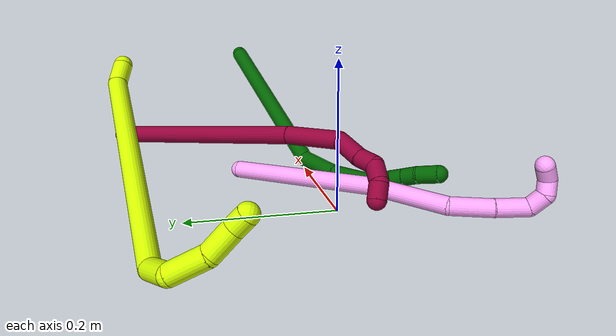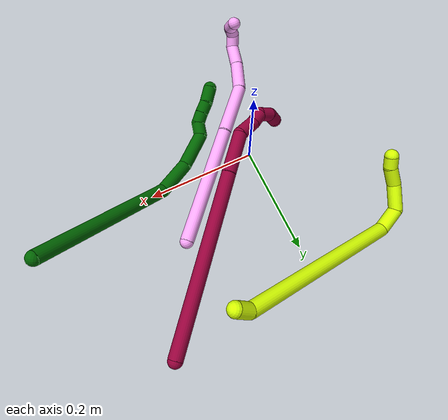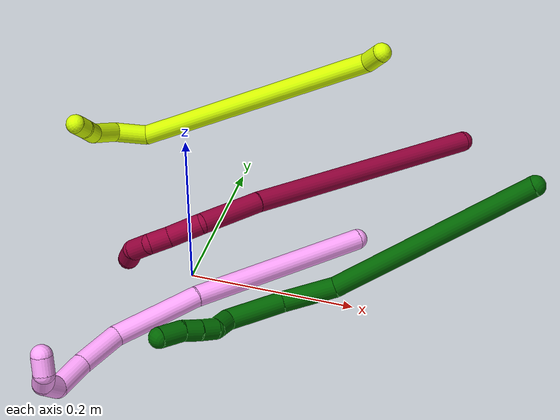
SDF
<sdf version="1.7">
 <world name="default">
  <model name="4">
   <static>0</static>
   <link name="4">
    <collision name="collision-cylinder-e_1_1_4">
     <pose>-0.058887 -0.071931 0.061845 0.860649 -0.555546 -0.260291</pose>
     <geometry><cylinder><radius>0.0125</radius><length>0.223309</length></cylinder></geometry>
     <surface>
      <friction><ode><mu>1.16</mu><mu2>1.16</mu2><slip1>0</slip1><slip2>0</slip2></ode></friction>
      <contact><ode><kp>1e+06</kp><kd>1</kd><max_vel>0</max_vel><min_depth>0.001</min_depth></ode></contact>
     </surface>
    </collision>
    <visual name="visual-cylinder-e_1_1_4">
     <pose>-0.058887 -0.071931 0.061845 0.860649 -0.555546 -0.260291</pose>
     <geometry><cylinder><radius>0.0125</radius><length>0.223309</length></cylinder></geometry>
     <material><ambient>1 0.65098 0.996078 1</ambient></material>
    </visual>
    <collision name="collision-cylinder-e_2_4_5">
     <pose>-0.143158 -0.183569 0.149204 0.999692 -0.493449 -0.273363</pose>
     <geometry><cylinder><radius>0.0125</radius><length>0.107179</length></cylinder></geometry>
     <surface>
      <friction><ode><mu>1.16</mu><mu2>1.16</mu2><slip1>0</slip1><slip2>0</slip2></ode></friction>
      <contact><ode><kp>1e+06</kp><kd>1</kd><max_vel>0</max_vel><min_depth>0.001</min_depth></ode></contact>
     </surface>
    </collision>
    <visual name="visual-cylinder-e_2_4_5">
     <pose>-0.143158 -0.183569 0.149204 0.999692 -0.493449 -0.273363</pose>
     <geometry><cylinder><radius>0.0125</radius><length>0.107179</length></cylinder></geometry>
     <material><ambient>1 0.65098 0.996078 1</ambient></material>
    </visual>
    <collision name="collision-cylinder-e_3_5_6">
     <pose>-0.17367 -0.243271 0.194632 0.787364 -0.179771 -0.074838</pose>
     <geometry><cylinder><radius>0.0125</radius><length>0.057367</length></cylinder></geometry>
     <surface>
      <friction><ode><mu>1.16</mu><mu2>1.16</mu2><slip1>0</slip1><slip2>0</slip2></ode></friction>
      <contact><ode><kp>1e+06</kp><kd>1</kd><max_vel>0</max_vel><min_depth>0.001</min_depth></ode></contact>
     </surface>
    </collision>
    <visual name="visual-cylinder-e_3_5_6">
     <pose>-0.17367 -0.243271 0.194632 0.787364 -0.179771 -0.074838</pose>
     <geometry><cylinder><radius>0.0125</radius><length>0.057367</length></cylinder></geometry>
     <material><ambient>1 0.65098 0.996078 1</ambient></material>
    </visual>
    <collision name="collision-cylinder-e_4_6_7">
     <pose>-0.180392 -0.277903 0.231272 0.718977 -0.071548 -0.026899</pose>
     <geometry><cylinder><radius>0.0125</radius><length>0.044563</length></cylinder></geometry>
     <surface>
      <friction><ode><mu>1.16</mu><mu2>1.16</mu2><slip1>0</slip1><slip2>0</slip2></ode></friction>
      <contact><ode><kp>1e+06</kp><kd>1</kd><max_vel>0</max_vel><min_depth>0.001</min_depth></ode></contact>
     </surface>
    </collision>
    <visual name="visual-cylinder-e_4_6_7">
     <pose>-0.180392 -0.277903 0.231272 0.718977 -0.071548 -0.026899</pose>
     <geometry><cylinder><radius>0.0125</radius><length>0.044563</length></cylinder></geometry>
     <material><ambient>1 0.65098 0.996078 1</ambient></material>
    </visual>
    <collision name="collision-cylinder-e_5_7_8">
     <pose>-0.187236 -0.292509 0.259726 -0.002677 -0.420917 0.000572</pose>
     <geometry><cylinder><radius>0.0125</radius><length>0.025705</length></cylinder></geometry>
     <surface>
      <friction><ode><mu>1.16</mu><mu2>1.16</mu2><slip1>0</slip1><slip2>0</slip2></ode></friction>
      <contact><ode><kp>1e+06</kp><kd>1</kd><max_vel>0</max_vel><min_depth>0.001</min_depth></ode></contact>
     </surface>
    </collision>
    <visual name="visual-cylinder-e_5_7_8">
     <pose>-0.187236 -0.292509 0.259726 -0.002677 -0.420917 0.000572</pose>
     <geometry><cylinder><radius>0.0125</radius><length>0.025705</length></cylinder></geometry>
     <material><ambient>1 0.65098 0.996078 1</ambient></material>
    </visual>
    <collision name="collision-cylinder-e_6_8_9">
     <pose>-0.19269 -0.285942 0.279224 -0.699563 -0.019865 0.007247</pose>
     <geometry><cylinder><radius>0.0125</radius><length>0.020306</length></cylinder></geometry>
     <surface>
      <friction><ode><mu>1.16</mu><mu2>1.16</mu2><slip1>0</slip1><slip2>0</slip2></ode></friction>
      <contact><ode><kp>1e+06</kp><kd>1</kd><max_vel>0</max_vel><min_depth>0.001</min_depth></ode></contact>
     </surface>
    </collision>
    <visual name="visual-cylinder-e_6_8_9">
     <pose>-0.19269 -0.285942 0.279224 -0.699563 -0.019865 0.007247</pose>
     <geometry><cylinder><radius>0.0125</radius><length>0.020306</length></cylinder></geometry>
     <material><ambient>1 0.65098 0.996078 1</ambient></material>
    </visual>
    <collision name="collision-cylinder-e_7_9_2">
     <pose>-0.198353 -0.270604 0.289994 -1.24193 -0.530993 0.384242</pose>
     <geometry><cylinder><radius>0.0125</radius><length>0.021571</length></cylinder></geometry>
     <surface>
      <friction><ode><mu>1.16</mu><mu2>1.16</mu2><slip1>0</slip1><slip2>0</slip2></ode></friction>
      <contact><ode><kp>1e+06</kp><kd>1</kd><max_vel>0</max_vel><min_depth>0.001</min_depth></ode></contact>
     </surface>
    </collision>
    <visual name="visual-cylinder-e_7_9_2">
     <pose>-0.198353 -0.270604 0.289994 -1.24193 -0.530993 0.384242</pose>
     <geometry><cylinder><radius>0.0125</radius><length>0.021571</length></cylinder></geometry>
     <material><ambient>1 0.65098 0.996078 1</ambient></material>
    </visual>
    <collision name="collision-sphere-2">
     <pose>-0.203815 -0.261802 0.292998 0 -0 0</pose>
     <geometry><sphere><radius>0.0125</radius></sphere></geometry>
     <surface>
      <friction><ode><mu>1.16</mu><mu2>1.16</mu2><slip1>0</slip1><slip2>0</slip2></ode></friction>
      <contact><ode><kp>1e+06</kp><kd>1</kd><max_vel>0</max_vel><min_depth>0.001</min_depth></ode></contact>
     </surface>
    </collision>
    <visual name="visual-sphere-2">
     <pose>-0.203815 -0.261802 0.292998 0 -0 0</pose>
     <geometry><sphere><radius>0.0125</radius></sphere></geometry>
     <material><ambient>1 0.65098 0.996078 1</ambient></material>
    </visual>
    <collision name="collision-sphere-9">
     <pose>-0.192891 -0.279406 0.28699 0 -0 0</pose>
     <geometry><sphere><radius>0.0125</radius></sphere></geometry>
     <surface>
      <friction><ode><mu>1.16</mu><mu2>1.16</mu2><slip1>0</slip1><slip2>0</slip2></ode></friction>
      <contact><ode><kp>1e+06</kp><kd>1</kd><max_vel>0</max_vel><min_depth>0.001</min_depth></ode></contact>
     </surface>
    </collision>
    <visual name="visual-sphere-9">
     <pose>-0.192891 -0.279406 0.28699 0 -0 0</pose>
     <geometry><sphere><radius>0.0125</radius></sphere></geometry>
     <material><ambient>1 0.65098 0.996078 1</ambient></material>
    </visual>
    <collision name="collision-sphere-4">
     <pose>-0.117775 -0.143863 0.123691 0 -0 0</pose>
     <geometry><sphere><radius>0.0125</radius></sphere></geometry>
     <surface>
      <friction><ode><mu>1.16</mu><mu2>1.16</mu2><slip1>0</slip1><slip2>0</slip2></ode></friction>
      <contact><ode><kp>1e+06</kp><kd>1</kd><max_vel>0</max_vel><min_depth>0.001</min_depth></ode></contact>
     </surface>
    </collision>
    <visual name="visual-sphere-4">
     <pose>-0.117775 -0.143863 0.123691 0 -0 0</pose>
     <geometry><sphere><radius>0.0125</radius></sphere></geometry>
     <material><ambient>1 0.65098 0.996078 1</ambient></material>
    </visual>
    <collision name="collision-sphere-1">
     <geometry><sphere><radius>0.0125</radius></sphere></geometry>
     <surface>
      <friction><ode><mu>1.16</mu><mu2>1.16</mu2><slip1>0</slip1><slip2>0</slip2></ode></friction>
      <contact><ode><kp>1e+06</kp><kd>1</kd><max_vel>0</max_vel><min_depth>0.001</min_depth></ode></contact>
     </surface>
    </collision>
    <visual name="visual-sphere-1">
     <geometry><sphere><radius>0.0125</radius></sphere></geometry>
     <material><ambient>1 0.65098 0.996078 1</ambient></material>
    </visual>
    <collision name="collision-sphere-8">
     <pose>-0.192488 -0.292478 0.271457 0 -0 0</pose>
     <geometry><sphere><radius>0.0125</radius></sphere></geometry>
     <surface>
      <friction><ode><mu>1.16</mu><mu2>1.16</mu2><slip1>0</slip1><slip2>0</slip2></ode></friction>
      <contact><ode><kp>1e+06</kp><kd>1</kd><max_vel>0</max_vel><min_depth>0.001</min_depth></ode></contact>
     </surface>
    </collision>
    <visual name="visual-sphere-8">
     <pose>-0.192488 -0.292478 0.271457 0 -0 0</pose>
     <geometry><sphere><radius>0.0125</radius></sphere></geometry>
     <material><ambient>1 0.65098 0.996078 1</ambient></material>
    </visual>
    <collision name="collision-sphere-5">
     <pose>-0.168542 -0.223276 0.174716 0 -0 0</pose>
     <geometry><sphere><radius>0.0125</radius></sphere></geometry>
     <surface>
      <friction><ode><mu>1.16</mu><mu2>1.16</mu2><slip1>0</slip1><slip2>0</slip2></ode></friction>
      <contact><ode><kp>1e+06</kp><kd>1</kd><max_vel>0</max_vel><min_depth>0.001</min_depth></ode></contact>
     </surface>
    </collision>
    <visual name="visual-sphere-5">
     <pose>-0.168542 -0.223276 0.174716 0 -0 0</pose>
     <geometry><sphere><radius>0.0125</radius></sphere></geometry>
     <material><ambient>1 0.65098 0.996078 1</ambient></material>
    </visual>
    <collision name="collision-sphere-6">
     <pose>-0.178799 -0.263265 0.214549 0 -0 0</pose>
     <geometry><sphere><radius>0.0125</radius></sphere></geometry>
     <surface>
      <friction><ode><mu>1.16</mu><mu2>1.16</mu2><slip1>0</slip1><slip2>0</slip2></ode></friction>
      <contact><ode><kp>1e+06</kp><kd>1</kd><max_vel>0</max_vel><min_depth>0.001</min_depth></ode></contact>
     </surface>
    </collision>
    <visual name="visual-sphere-6">
     <pose>-0.178799 -0.263265 0.214549 0 -0 0</pose>
     <geometry><sphere><radius>0.0125</radius></sphere></geometry>
     <material><ambient>1 0.65098 0.996078 1</ambient></material>
    </visual>
    <collision name="collision-sphere-7">
     <pose>-0.181985 -0.29254 0.247996 0 -0 0</pose>
     <geometry><sphere><radius>0.0125</radius></sphere></geometry>
     <surface>
      <friction><ode><mu>1.16</mu><mu2>1.16</mu2><slip1>0</slip1><slip2>0</slip2></ode></friction>
      <contact><ode><kp>1e+06</kp><kd>1</kd><max_vel>0</max_vel><min_depth>0.001</min_depth></ode></contact>
     </surface>
    </collision>
    <visual name="visual-sphere-7">
     <pose>-0.181985 -0.29254 0.247996 0 -0 0</pose>
     <geometry><sphere><radius>0.0125</radius></sphere></geometry>
     <material><ambient>1 0.65098 0.996078 1</ambient></material>
    </visual>
    <inertial>
     <pose>-0.119 -0.16248 0.139751 0 -0 0</pose>
     <mass>0.5</mass>
     <inertia>
      <ixx>0.000644</ixx>
      <ixy>0</ixy>
      <ixz>0</ixz>
      <iyy>0.000526</iyy>
      <iyz>0</iyz>
      <izz>0.001272</izz>
     </inertia>
    </inertial>
   </link>
   <pose>0.17665 0.107747 0.011897 0.834027 0.275161 -0.176235</pose>
  </model>
  <model name="6">
   <static>0</static>
   <link name="6">
    <collision name="collision-cylinder-e_1_1_4">
     <pose>0.072701 -0.08537 -0.071204 2.26597 0.57917 1.13368</pose>
     <geometry><cylinder><radius>0.0125</radius><length>0.265659</length></cylinder></geometry>
     <surface>
      <friction><ode><mu>1.16</mu><mu2>1.16</mu2><slip1>0</slip1><slip2>0</slip2></ode></friction>
      <contact><ode><kp>1e+06</kp><kd>1</kd><max_vel>0</max_vel><min_depth>0.001</min_depth></ode></contact>
     </surface>
    </collision>
    <visual name="visual-cylinder-e_1_1_4">
     <pose>0.072701 -0.08537 -0.071204 2.26597 0.57917 1.13368</pose>
     <geometry><cylinder><radius>0.0125</radius><length>0.265659</length></cylinder></geometry>
     <material><ambient>0 0.392157 0.003922 1</ambient></material>
    </visual>
    <collision name="collision-cylinder-e_2_4_5">
     <pose>0.151263 -0.199862 -0.156317 2.01635 0.179629 0.283703</pose>
     <geometry><cylinder><radius>0.0125</radius><length>0.0656</length></cylinder></geometry>
     <surface>
      <friction><ode><mu>1.16</mu><mu2>1.16</mu2><slip1>0</slip1><slip2>0</slip2></ode></friction>
      <contact><ode><kp>1e+06</kp><kd>1</kd><max_vel>0</max_vel><min_depth>0.001</min_depth></ode></contact>
     </surface>
    </collision>
    <visual name="visual-cylinder-e_2_4_5">
     <pose>0.151263 -0.199862 -0.156317 2.01635 0.179629 0.283703</pose>
     <geometry><cylinder><radius>0.0125</radius><length>0.0656</length></cylinder></geometry>
     <material><ambient>0 0.392157 0.003922 1</ambient></material>
    </visual>
    <collision name="collision-cylinder-e_3_5_6">
     <pose>0.159949 -0.262441 -0.178875 1.82379 0.081599 0.105338</pose>
     <geometry><cylinder><radius>0.0125</radius><length>0.069345</length></cylinder></geometry>
     <surface>
      <friction><ode><mu>1.16</mu><mu2>1.16</mu2><slip1>0</slip1><slip2>0</slip2></ode></friction>
      <contact><ode><kp>1e+06</kp><kd>1</kd><max_vel>0</max_vel><min_depth>0.001</min_depth></ode></contact>
     </surface>
    </collision>
    <visual name="visual-cylinder-e_3_5_6">
     <pose>0.159949 -0.262441 -0.178875 1.82379 0.081599 0.105338</pose>
     <geometry><cylinder><radius>0.0125</radius><length>0.069345</length></cylinder></geometry>
     <material><ambient>0 0.392157 0.003922 1</ambient></material>
    </visual>
    <collision name="collision-cylinder-e_4_6_7">
     <pose>0.160914 -0.307539 -0.182901 1.19273 -0.147494 -0.100219</pose>
     <geometry><cylinder><radius>0.0125</radius><length>0.025327</length></cylinder></geometry>
     <surface>
      <friction><ode><mu>1.16</mu><mu2>1.16</mu2><slip1>0</slip1><slip2>0</slip2></ode></friction>
      <contact><ode><kp>1e+06</kp><kd>1</kd><max_vel>0</max_vel><min_depth>0.001</min_depth></ode></contact>
     </surface>
    </collision>
    <visual name="visual-cylinder-e_4_6_7">
     <pose>0.160914 -0.307539 -0.182901 1.19273 -0.147494 -0.100219</pose>
     <geometry><cylinder><radius>0.0125</radius><length>0.025327</length></cylinder></geometry>
     <material><ambient>0 0.392157 0.003922 1</ambient></material>
    </visual>
    <collision name="collision-cylinder-e_5_7_8">
     <pose>0.15646 -0.32938 -0.179913 1.72985 -0.245981 -0.288038</pose>
     <geometry><cylinder><radius>0.0125</radius><length>0.021301</length></cylinder></geometry>
     <surface>
      <friction><ode><mu>1.16</mu><mu2>1.16</mu2><slip1>0</slip1><slip2>0</slip2></ode></friction>
      <contact><ode><kp>1e+06</kp><kd>1</kd><max_vel>0</max_vel><min_depth>0.001</min_depth></ode></contact>
     </surface>
    </collision>
    <visual name="visual-cylinder-e_5_7_8">
     <pose>0.15646 -0.32938 -0.179913 1.72985 -0.245981 -0.288038</pose>
     <geometry><cylinder><radius>0.0125</radius><length>0.021301</length></cylinder></geometry>
     <material><ambient>0 0.392157 0.003922 1</ambient></material>
    </visual>
    <collision name="collision-cylinder-e_6_8_9">
     <pose>0.150915 -0.349873 -0.184009 1.80534 -0.271986 -0.343359</pose>
     <geometry><cylinder><radius>0.0125</radius><length>0.021974</length></cylinder></geometry>
     <surface>
      <friction><ode><mu>1.16</mu><mu2>1.16</mu2><slip1>0</slip1><slip2>0</slip2></ode></friction>
      <contact><ode><kp>1e+06</kp><kd>1</kd><max_vel>0</max_vel><min_depth>0.001</min_depth></ode></contact>
     </surface>
    </collision>
    <visual name="visual-cylinder-e_6_8_9">
     <pose>0.150915 -0.349873 -0.184009 1.80534 -0.271986 -0.343359</pose>
     <geometry><cylinder><radius>0.0125</radius><length>0.021974</length></cylinder></geometry>
     <material><ambient>0 0.392157 0.003922 1</ambient></material>
    </visual>
    <collision name="collision-cylinder-e_7_9_2">
     <pose>0.146302 -0.375447 -0.187377 1.6302 -0.108071 -0.114675</pose>
     <geometry><cylinder><radius>0.0125</radius><length>0.030794</length></cylinder></geometry>
     <surface>
      <friction><ode><mu>1.16</mu><mu2>1.16</mu2><slip1>0</slip1><slip2>0</slip2></ode></friction>
      <contact><ode><kp>1e+06</kp><kd>1</kd><max_vel>0</max_vel><min_depth>0.001</min_depth></ode></contact>
     </surface>
    </collision>
    <visual name="visual-cylinder-e_7_9_2">
     <pose>0.146302 -0.375447 -0.187377 1.6302 -0.108071 -0.114675</pose>
     <geometry><cylinder><radius>0.0125</radius><length>0.030794</length></cylinder></geometry>
     <material><ambient>0 0.392157 0.003922 1</ambient></material>
    </visual>
    <collision name="collision-sphere-2">
     <pose>0.144642 -0.390727 -0.188286 0 -0 0</pose>
     <geometry><sphere><radius>0.0125</radius></sphere></geometry>
     <surface>
      <friction><ode><mu>1.16</mu><mu2>1.16</mu2><slip1>0</slip1><slip2>0</slip2></ode></friction>
      <contact><ode><kp>1e+06</kp><kd>1</kd><max_vel>0</max_vel><min_depth>0.001</min_depth></ode></contact>
     </surface>
    </collision>
    <visual name="visual-sphere-2">
     <pose>0.144642 -0.390727 -0.188286 0 -0 0</pose>
     <geometry><sphere><radius>0.0125</radius></sphere></geometry>
     <material><ambient>0 0.392157 0.003922 1</ambient></material>
    </visual>
    <collision name="collision-sphere-9">
     <pose>0.147963 -0.360166 -0.186469 0 -0 0</pose>
     <geometry><sphere><radius>0.0125</radius></sphere></geometry>
     <surface>
      <friction><ode><mu>1.16</mu><mu2>1.16</mu2><slip1>0</slip1><slip2>0</slip2></ode></friction>
      <contact><ode><kp>1e+06</kp><kd>1</kd><max_vel>0</max_vel><min_depth>0.001</min_depth></ode></contact>
     </surface>
    </collision>
    <visual name="visual-sphere-9">
     <pose>0.147963 -0.360166 -0.186469 0 -0 0</pose>
     <geometry><sphere><radius>0.0125</radius></sphere></geometry>
     <material><ambient>0 0.392157 0.003922 1</ambient></material>
    </visual>
    <collision name="collision-sphere-4">
     <pose>0.145403 -0.17074 -0.142409 0 -0 0</pose>
     <geometry><sphere><radius>0.0125</radius></sphere></geometry>
     <surface>
      <friction><ode><mu>1.16</mu><mu2>1.16</mu2><slip1>0</slip1><slip2>0</slip2></ode></friction>
      <contact><ode><kp>1e+06</kp><kd>1</kd><max_vel>0</max_vel><min_depth>0.001</min_depth></ode></contact>
     </surface>
    </collision>
    <visual name="visual-sphere-4">
     <pose>0.145403 -0.17074 -0.142409 0 -0 0</pose>
     <geometry><sphere><radius>0.0125</radius></sphere></geometry>
     <material><ambient>0 0.392157 0.003922 1</ambient></material>
    </visual>
    <collision name="collision-sphere-1">
     <geometry><sphere><radius>0.0125</radius></sphere></geometry>
     <surface>
      <friction><ode><mu>1.16</mu><mu2>1.16</mu2><slip1>0</slip1><slip2>0</slip2></ode></friction>
      <contact><ode><kp>1e+06</kp><kd>1</kd><max_vel>0</max_vel><min_depth>0.001</min_depth></ode></contact>
     </surface>
    </collision>
    <visual name="visual-sphere-1">
     <geometry><sphere><radius>0.0125</radius></sphere></geometry>
     <material><ambient>0 0.392157 0.003922 1</ambient></material>
    </visual>
    <collision name="collision-sphere-8">
     <pose>0.153866 -0.339579 -0.181549 0 -0 0</pose>
     <geometry><sphere><radius>0.0125</radius></sphere></geometry>
     <surface>
      <friction><ode><mu>1.16</mu><mu2>1.16</mu2><slip1>0</slip1><slip2>0</slip2></ode></friction>
      <contact><ode><kp>1e+06</kp><kd>1</kd><max_vel>0</max_vel><min_depth>0.001</min_depth></ode></contact>
     </surface>
    </collision>
    <visual name="visual-sphere-8">
     <pose>0.153866 -0.339579 -0.181549 0 -0 0</pose>
     <geometry><sphere><radius>0.0125</radius></sphere></geometry>
     <material><ambient>0 0.392157 0.003922 1</ambient></material>
    </visual>
    <collision name="collision-sphere-5">
     <pose>0.157123 -0.228984 -0.170225 0 -0 0</pose>
     <geometry><sphere><radius>0.0125</radius></sphere></geometry>
     <surface>
      <friction><ode><mu>1.16</mu><mu2>1.16</mu2><slip1>0</slip1><slip2>0</slip2></ode></friction>
      <contact><ode><kp>1e+06</kp><kd>1</kd><max_vel>0</max_vel><min_depth>0.001</min_depth></ode></contact>
     </surface>
    </collision>
    <visual name="visual-sphere-5">
     <pose>0.157123 -0.228984 -0.170225 0 -0 0</pose>
     <geometry><sphere><radius>0.0125</radius></sphere></geometry>
     <material><ambient>0 0.392157 0.003922 1</ambient></material>
    </visual>
    <collision name="collision-sphere-6">
     <pose>0.162775 -0.295898 -0.187524 0 -0 0</pose>
     <geometry><sphere><radius>0.0125</radius></sphere></geometry>
     <surface>
      <friction><ode><mu>1.16</mu><mu2>1.16</mu2><slip1>0</slip1><slip2>0</slip2></ode></friction>
      <contact><ode><kp>1e+06</kp><kd>1</kd><max_vel>0</max_vel><min_depth>0.001</min_depth></ode></contact>
     </surface>
    </collision>
    <visual name="visual-sphere-6">
     <pose>0.162775 -0.295898 -0.187524 0 -0 0</pose>
     <geometry><sphere><radius>0.0125</radius></sphere></geometry>
     <material><ambient>0 0.392157 0.003922 1</ambient></material>
    </visual>
    <collision name="collision-sphere-7">
     <pose>0.159053 -0.31918 -0.178277 0 -0 0</pose>
     <geometry><sphere><radius>0.0125</radius></sphere></geometry>
     <surface>
      <friction><ode><mu>1.16</mu><mu2>1.16</mu2><slip1>0</slip1><slip2>0</slip2></ode></friction>
      <contact><ode><kp>1e+06</kp><kd>1</kd><max_vel>0</max_vel><min_depth>0.001</min_depth></ode></contact>
     </surface>
    </collision>
    <visual name="visual-sphere-7">
     <pose>0.159053 -0.31918 -0.178277 0 -0 0</pose>
     <geometry><sphere><radius>0.0125</radius></sphere></geometry>
     <material><ambient>0 0.392157 0.003922 1</ambient></material>
    </visual>
    <inertial>
     <pose>0.111116 -0.176088 -0.119706 0 -0 0</pose>
     <mass>0.5</mass>
     <inertia>
      <ixx>0.001834</ixx>
      <ixy>0</ixy>
      <ixz>0</ixz>
      <iyy>0.001327</iyy>
      <iyz>0</iyz>
      <izz>0.000191</izz>
     </inertia>
    </inertial>
   </link>
   <pose>0.388502 0.078946 0.165162 -0.754132 1.46048 -1.36295</pose>
  </model>
  <model name="8">
   <static>0</static>
   <link name="8">
    <collision name="collision-cylinder-e_1_1_4">
     <pose>-0.002648 0.016315 -0.153253 -3.03553 -0.01718 0.320895</pose>
     <geometry><cylinder><radius>0.0125</radius><length>0.308284</length></cylinder></geometry>
     <surface>
      <friction><ode><mu>1.16</mu><mu2>1.16</mu2><slip1>0</slip1><slip2>0</slip2></ode></friction>
      <contact><ode><kp>1e+06</kp><kd>1</kd><max_vel>0</max_vel><min_depth>0.001</min_depth></ode></contact>
     </surface>
    </collision>
    <visual name="visual-cylinder-e_1_1_4">
     <pose>-0.002648 0.016315 -0.153253 -3.03553 -0.01718 0.320895</pose>
     <geometry><cylinder><radius>0.0125</radius><length>0.308284</length></cylinder></geometry>
     <material><ambient>0.584314 0 0.227451 1</ambient></material>
    </visual>
    <collision name="collision-cylinder-e_2_4_5">
     <pose>-0.007194 0.033543 -0.344827 -3.11779 -0.049469 2.24482</pose>
     <geometry><cylinder><radius>0.0125</radius><length>0.076756</length></cylinder></geometry>
     <surface>
      <friction><ode><mu>1.16</mu><mu2>1.16</mu2><slip1>0</slip1><slip2>0</slip2></ode></friction>
      <contact><ode><kp>1e+06</kp><kd>1</kd><max_vel>0</max_vel><min_depth>0.001</min_depth></ode></contact>
     </surface>
    </collision>
    <visual name="visual-cylinder-e_2_4_5">
     <pose>-0.007194 0.033543 -0.344827 -3.11779 -0.049469 2.24482</pose>
     <geometry><cylinder><radius>0.0125</radius><length>0.076756</length></cylinder></geometry>
     <material><ambient>0.584314 0 0.227451 1</ambient></material>
    </visual>
    <collision name="collision-cylinder-e_3_5_6">
     <pose>-0.004926 0.025151 -0.401023 2.66167 0.203853 0.791903</pose>
     <geometry><cylinder><radius>0.0125</radius><length>0.041156</length></cylinder></geometry>
     <surface>
      <friction><ode><mu>1.16</mu><mu2>1.16</mu2><slip1>0</slip1><slip2>0</slip2></ode></friction>
      <contact><ode><kp>1e+06</kp><kd>1</kd><max_vel>0</max_vel><min_depth>0.001</min_depth></ode></contact>
     </surface>
    </collision>
    <visual name="visual-cylinder-e_3_5_6">
     <pose>-0.004926 0.025151 -0.401023 2.66167 0.203853 0.791903</pose>
     <geometry><cylinder><radius>0.0125</radius><length>0.041156</length></cylinder></geometry>
     <material><ambient>0.584314 0 0.227451 1</ambient></material>
    </visual>
    <collision name="collision-cylinder-e_4_6_7">
     <pose>0.001059 0.012541 -0.430809 2.87089 0.146086 0.986106</pose>
     <geometry><cylinder><radius>0.0125</radius><length>0.024989</length></cylinder></geometry>
     <surface>
      <friction><ode><mu>1.16</mu><mu2>1.16</mu2><slip1>0</slip1><slip2>0</slip2></ode></friction>
      <contact><ode><kp>1e+06</kp><kd>1</kd><max_vel>0</max_vel><min_depth>0.001</min_depth></ode></contact>
     </surface>
    </collision>
    <visual name="visual-cylinder-e_4_6_7">
     <pose>0.001059 0.012541 -0.430809 2.87089 0.146086 0.986106</pose>
     <geometry><cylinder><radius>0.0125</radius><length>0.024989</length></cylinder></geometry>
     <material><ambient>0.584314 0 0.227451 1</ambient></material>
    </visual>
    <collision name="collision-cylinder-e_5_7_8">
     <pose>0.008374 -0.000679 -0.449561 2.17472 0.428061 0.785085</pose>
     <geometry><cylinder><radius>0.0125</radius><length>0.02648</length></cylinder></geometry>
     <surface>
      <friction><ode><mu>1.16</mu><mu2>1.16</mu2><slip1>0</slip1><slip2>0</slip2></ode></friction>
      <contact><ode><kp>1e+06</kp><kd>1</kd><max_vel>0</max_vel><min_depth>0.001</min_depth></ode></contact>
     </surface>
    </collision>
    <visual name="visual-cylinder-e_5_7_8">
     <pose>0.008374 -0.000679 -0.449561 2.17472 0.428061 0.785085</pose>
     <geometry><cylinder><radius>0.0125</radius><length>0.02648</length></cylinder></geometry>
     <material><ambient>0.584314 0 0.227451 1</ambient></material>
    </visual>
    <collision name="collision-cylinder-e_6_8_2">
     <pose>0.015856 -0.021537 -0.457399 1.66171 0.178833 0.195774</pose>
     <geometry><cylinder><radius>0.0125</radius><length>0.022335</length></cylinder></geometry>
     <surface>
      <friction><ode><mu>1.16</mu><mu2>1.16</mu2><slip1>0</slip1><slip2>0</slip2></ode></friction>
      <contact><ode><kp>1e+06</kp><kd>1</kd><max_vel>0</max_vel><min_depth>0.001</min_depth></ode></contact>
     </surface>
    </collision>
    <visual name="visual-cylinder-e_6_8_2">
     <pose>0.015856 -0.021537 -0.457399 1.66171 0.178833 0.195774</pose>
     <geometry><cylinder><radius>0.0125</radius><length>0.022335</length></cylinder></geometry>
     <material><ambient>0.584314 0 0.227451 1</ambient></material>
    </visual>
    <collision name="collision-sphere-2">
     <pose>0.017843 -0.032481 -0.458397 0 -0 0</pose>
     <geometry><sphere><radius>0.0125</radius></sphere></geometry>
     <surface>
      <friction><ode><mu>1.16</mu><mu2>1.16</mu2><slip1>0</slip1><slip2>0</slip2></ode></friction>
      <contact><ode><kp>1e+06</kp><kd>1</kd><max_vel>0</max_vel><min_depth>0.001</min_depth></ode></contact>
     </surface>
    </collision>
    <visual name="visual-sphere-2">
     <pose>0.017843 -0.032481 -0.458397 0 -0 0</pose>
     <geometry><sphere><radius>0.0125</radius></sphere></geometry>
     <material><ambient>0.584314 0 0.227451 1</ambient></material>
    </visual>
    <collision name="collision-sphere-4">
     <pose>-0.005296 0.032631 -0.306507 0 -0 0</pose>
     <geometry><sphere><radius>0.0125</radius></sphere></geometry>
     <surface>
      <friction><ode><mu>1.16</mu><mu2>1.16</mu2><slip1>0</slip1><slip2>0</slip2></ode></friction>
      <contact><ode><kp>1e+06</kp><kd>1</kd><max_vel>0</max_vel><min_depth>0.001</min_depth></ode></contact>
     </surface>
    </collision>
    <visual name="visual-sphere-4">
     <pose>-0.005296 0.032631 -0.306507 0 -0 0</pose>
     <geometry><sphere><radius>0.0125</radius></sphere></geometry>
     <material><ambient>0.584314 0 0.227451 1</ambient></material>
    </visual>
    <collision name="collision-sphere-1">
     <geometry><sphere><radius>0.0125</radius></sphere></geometry>
     <surface>
      <friction><ode><mu>1.16</mu><mu2>1.16</mu2><slip1>0</slip1><slip2>0</slip2></ode></friction>
      <contact><ode><kp>1e+06</kp><kd>1</kd><max_vel>0</max_vel><min_depth>0.001</min_depth></ode></contact>
     </surface>
    </collision>
    <visual name="visual-sphere-1">
     <geometry><sphere><radius>0.0125</radius></sphere></geometry>
     <material><ambient>0.584314 0 0.227451 1</ambient></material>
    </visual>
    <collision name="collision-sphere-8">
     <pose>0.01387 -0.010593 -0.456401 0 -0 0</pose>
     <geometry><sphere><radius>0.0125</radius></sphere></geometry>
     <surface>
      <friction><ode><mu>1.16</mu><mu2>1.16</mu2><slip1>0</slip1><slip2>0</slip2></ode></friction>
      <contact><ode><kp>1e+06</kp><kd>1</kd><max_vel>0</max_vel><min_depth>0.001</min_depth></ode></contact>
     </surface>
    </collision>
    <visual name="visual-sphere-8">
     <pose>0.01387 -0.010593 -0.456401 0 -0 0</pose>
     <geometry><sphere><radius>0.0125</radius></sphere></geometry>
     <material><ambient>0.584314 0 0.227451 1</ambient></material>
    </visual>
    <collision name="collision-sphere-5">
     <pose>-0.009092 0.034455 -0.383147 0 -0 0</pose>
     <geometry><sphere><radius>0.0125</radius></sphere></geometry>
     <surface>
      <friction><ode><mu>1.16</mu><mu2>1.16</mu2><slip1>0</slip1><slip2>0</slip2></ode></friction>
      <contact><ode><kp>1e+06</kp><kd>1</kd><max_vel>0</max_vel><min_depth>0.001</min_depth></ode></contact>
     </surface>
    </collision>
    <visual name="visual-sphere-5">
     <pose>-0.009092 0.034455 -0.383147 0 -0 0</pose>
     <geometry><sphere><radius>0.0125</radius></sphere></geometry>
     <material><ambient>0.584314 0 0.227451 1</ambient></material>
    </visual>
    <collision name="collision-sphere-6">
     <pose>-0.00076 0.015847 -0.418898 0 -0 0</pose>
     <geometry><sphere><radius>0.0125</radius></sphere></geometry>
     <surface>
      <friction><ode><mu>1.16</mu><mu2>1.16</mu2><slip1>0</slip1><slip2>0</slip2></ode></friction>
      <contact><ode><kp>1e+06</kp><kd>1</kd><max_vel>0</max_vel><min_depth>0.001</min_depth></ode></contact>
     </surface>
    </collision>
    <visual name="visual-sphere-6">
     <pose>-0.00076 0.015847 -0.418898 0 -0 0</pose>
     <geometry><sphere><radius>0.0125</radius></sphere></geometry>
     <material><ambient>0.584314 0 0.227451 1</ambient></material>
    </visual>
    <collision name="collision-sphere-7">
     <pose>0.002878 0.009236 -0.442721 0 -0 0</pose>
     <geometry><sphere><radius>0.0125</radius></sphere></geometry>
     <surface>
      <friction><ode><mu>1.16</mu><mu2>1.16</mu2><slip1>0</slip1><slip2>0</slip2></ode></friction>
      <contact><ode><kp>1e+06</kp><kd>1</kd><max_vel>0</max_vel><min_depth>0.001</min_depth></ode></contact>
     </surface>
    </collision>
    <visual name="visual-sphere-7">
     <pose>0.002878 0.009236 -0.442721 0 -0 0</pose>
     <geometry><sphere><radius>0.0125</radius></sphere></geometry>
     <material><ambient>0.584314 0 0.227451 1</ambient></material>
    </visual>
    <inertial>
     <pose>-0.001938 0.016908 -0.246207 0 -0 0</pose>
     <mass>0.5</mass>
     <inertia>
      <ixx>0.003128</ixx>
      <ixy>0</ixy>
      <ixz>0</ixz>
      <iyy>-0.001482</iyy>
      <iyz>0</iyz>
      <izz>-0.000248</izz>
     </inertia>
    </inertial>
   </link>
   <pose>0.268203 0.282853 0.055273 1.58513 -0.298262 2.37623</pose>
  </model>
  <model name="15">
   <static>0</static>
   <link name="15">
    <collision name="collision-cylinder-e_1_1_4">
     <pose>0.001433 0.000348 0.015189 -0.022892 0.09403 -0.001077</pose>
     <geometry><cylinder><radius>0.0125</radius><length>0.030521</length></cylinder></geometry>
     <surface>
      <friction><ode><mu>1.16</mu><mu2>1.16</mu2><slip1>0</slip1><slip2>0</slip2></ode></friction>
      <contact><ode><kp>1e+06</kp><kd>1</kd><max_vel>0</max_vel><min_depth>0.001</min_depth></ode></contact>
     </surface>
    </collision>
    <visual name="visual-cylinder-e_1_1_4">
     <pose>0.001433 0.000348 0.015189 -0.022892 0.09403 -0.001077</pose>
     <geometry><cylinder><radius>0.0125</radius><length>0.030521</length></cylinder></geometry>
     <material><ambient>0.835294 1 0 1</ambient></material>
    </visual>
    <collision name="collision-cylinder-e_2_4_5">
     <pose>-0.033487 0.073823 0.170648 -0.480566 -0.225886 0.055568</pose>
     <geometry><cylinder><radius>0.0125</radius><length>0.324622</length></cylinder></geometry>
     <surface>
      <friction><ode><mu>1.16</mu><mu2>1.16</mu2><slip1>0</slip1><slip2>0</slip2></ode></friction>
      <contact><ode><kp>1e+06</kp><kd>1</kd><max_vel>0</max_vel><min_depth>0.001</min_depth></ode></contact>
     </surface>
    </collision>
    <visual name="visual-cylinder-e_2_4_5">
     <pose>-0.033487 0.073823 0.170648 -0.480566 -0.225886 0.055568</pose>
     <geometry><cylinder><radius>0.0125</radius><length>0.324622</length></cylinder></geometry>
     <material><ambient>0.835294 1 0 1</ambient></material>
    </visual>
    <collision name="collision-cylinder-e_3_5_6">
     <pose>-0.084005 0.161765 0.317792 -1.13639 -0.714459 0.467853</pose>
     <geometry><cylinder><radius>0.0125</radius><length>0.043237</length></cylinder></geometry>
     <surface>
      <friction><ode><mu>1.16</mu><mu2>1.16</mu2><slip1>0</slip1><slip2>0</slip2></ode></friction>
      <contact><ode><kp>1e+06</kp><kd>1</kd><max_vel>0</max_vel><min_depth>0.001</min_depth></ode></contact>
     </surface>
    </collision>
    <visual name="visual-cylinder-e_3_5_6">
     <pose>-0.084005 0.161765 0.317792 -1.13639 -0.714459 0.467853</pose>
     <geometry><cylinder><radius>0.0125</radius><length>0.043237</length></cylinder></geometry>
     <material><ambient>0.835294 1 0 1</ambient></material>
    </visual>
    <collision name="collision-cylinder-e_4_6_7">
     <pose>-0.106902 0.196373 0.316017 -1.98273 -0.384166 0.577787</pose>
     <geometry><cylinder><radius>0.0125</radius><length>0.046598</length></cylinder></geometry>
     <surface>
      <friction><ode><mu>1.16</mu><mu2>1.16</mu2><slip1>0</slip1><slip2>0</slip2></ode></friction>
      <contact><ode><kp>1e+06</kp><kd>1</kd><max_vel>0</max_vel><min_depth>0.001</min_depth></ode></contact>
     </surface>
    </collision>
    <visual name="visual-cylinder-e_4_6_7">
     <pose>-0.106902 0.196373 0.316017 -1.98273 -0.384166 0.577787</pose>
     <geometry><cylinder><radius>0.0125</radius><length>0.046598</length></cylinder></geometry>
     <material><ambient>0.835294 1 0 1</ambient></material>
    </visual>
    <collision name="collision-cylinder-e_5_7_8">
     <pose>-0.122218 0.226613 0.295432 -2.4227 -0.393464 0.975351</pose>
     <geometry><cylinder><radius>0.0125</radius><length>0.034347</length></cylinder></geometry>
     <surface>
      <friction><ode><mu>1.16</mu><mu2>1.16</mu2><slip1>0</slip1><slip2>0</slip2></ode></friction>
      <contact><ode><kp>1e+06</kp><kd>1</kd><max_vel>0</max_vel><min_depth>0.001</min_depth></ode></contact>
     </surface>
    </collision>
    <visual name="visual-cylinder-e_5_7_8">
     <pose>-0.122218 0.226613 0.295432 -2.4227 -0.393464 0.975351</pose>
     <geometry><cylinder><radius>0.0125</radius><length>0.034347</length></cylinder></geometry>
     <material><ambient>0.835294 1 0 1</ambient></material>
    </visual>
    <collision name="collision-cylinder-e_6_8_2">
     <pose>-0.134873 0.243663 0.278359 -2.2319 -0.627656 1.17181</pose>
     <geometry><cylinder><radius>0.0125</radius><length>0.020675</length></cylinder></geometry>
     <surface>
      <friction><ode><mu>1.16</mu><mu2>1.16</mu2><slip1>0</slip1><slip2>0</slip2></ode></friction>
      <contact><ode><kp>1e+06</kp><kd>1</kd><max_vel>0</max_vel><min_depth>0.001</min_depth></ode></contact>
     </surface>
    </collision>
    <visual name="visual-cylinder-e_6_8_2">
     <pose>-0.134873 0.243663 0.278359 -2.2319 -0.627656 1.17181</pose>
     <geometry><cylinder><radius>0.0125</radius><length>0.020675</length></cylinder></geometry>
     <material><ambient>0.835294 1 0 1</ambient></material>
    </visual>
    <collision name="collision-sphere-2">
     <pose>-0.140943 0.250267 0.273221 0 -0 0</pose>
     <geometry><sphere><radius>0.0125</radius></sphere></geometry>
     <surface>
      <friction><ode><mu>1.16</mu><mu2>1.16</mu2><slip1>0</slip1><slip2>0</slip2></ode></friction>
      <contact><ode><kp>1e+06</kp><kd>1</kd><max_vel>0</max_vel><min_depth>0.001</min_depth></ode></contact>
     </surface>
    </collision>
    <visual name="visual-sphere-2">
     <pose>-0.140943 0.250267 0.273221 0 -0 0</pose>
     <geometry><sphere><radius>0.0125</radius></sphere></geometry>
     <material><ambient>0.835294 1 0 1</ambient></material>
    </visual>
    <collision name="collision-sphere-4">
     <pose>0.002866 0.000696 0.030378 0 -0 0</pose>
     <geometry><sphere><radius>0.0125</radius></sphere></geometry>
     <surface>
      <friction><ode><mu>1.16</mu><mu2>1.16</mu2><slip1>0</slip1><slip2>0</slip2></ode></friction>
      <contact><ode><kp>1e+06</kp><kd>1</kd><max_vel>0</max_vel><min_depth>0.001</min_depth></ode></contact>
     </surface>
    </collision>
    <visual name="visual-sphere-4">
     <pose>0.002866 0.000696 0.030378 0 -0 0</pose>
     <geometry><sphere><radius>0.0125</radius></sphere></geometry>
     <material><ambient>0.835294 1 0 1</ambient></material>
    </visual>
    <collision name="collision-sphere-1">
     <geometry><sphere><radius>0.0125</radius></sphere></geometry>
     <surface>
      <friction><ode><mu>1.16</mu><mu2>1.16</mu2><slip1>0</slip1><slip2>0</slip2></ode></friction>
      <contact><ode><kp>1e+06</kp><kd>1</kd><max_vel>0</max_vel><min_depth>0.001</min_depth></ode></contact>
     </surface>
    </collision>
    <visual name="visual-sphere-1">
     <geometry><sphere><radius>0.0125</radius></sphere></geometry>
     <material><ambient>0.835294 1 0 1</ambient></material>
    </visual>
    <collision name="collision-sphere-8">
     <pose>-0.128802 0.237058 0.283496 0 -0 0</pose>
     <geometry><sphere><radius>0.0125</radius></sphere></geometry>
     <surface>
      <friction><ode><mu>1.16</mu><mu2>1.16</mu2><slip1>0</slip1><slip2>0</slip2></ode></friction>
      <contact><ode><kp>1e+06</kp><kd>1</kd><max_vel>0</max_vel><min_depth>0.001</min_depth></ode></contact>
     </surface>
    </collision>
    <visual name="visual-sphere-8">
     <pose>-0.128802 0.237058 0.283496 0 -0 0</pose>
     <geometry><sphere><radius>0.0125</radius></sphere></geometry>
     <material><ambient>0.835294 1 0 1</ambient></material>
    </visual>
    <collision name="collision-sphere-5">
     <pose>-0.06984 0.14695 0.310919 0 -0 0</pose>
     <geometry><sphere><radius>0.0125</radius></sphere></geometry>
     <surface>
      <friction><ode><mu>1.16</mu><mu2>1.16</mu2><slip1>0</slip1><slip2>0</slip2></ode></friction>
      <contact><ode><kp>1e+06</kp><kd>1</kd><max_vel>0</max_vel><min_depth>0.001</min_depth></ode></contact>
     </surface>
    </collision>
    <visual name="visual-sphere-5">
     <pose>-0.06984 0.14695 0.310919 0 -0 0</pose>
     <geometry><sphere><radius>0.0125</radius></sphere></geometry>
     <material><ambient>0.835294 1 0 1</ambient></material>
    </visual>
    <collision name="collision-sphere-6">
     <pose>-0.098169 0.176579 0.324666 0 -0 0</pose>
     <geometry><sphere><radius>0.0125</radius></sphere></geometry>
     <surface>
      <friction><ode><mu>1.16</mu><mu2>1.16</mu2><slip1>0</slip1><slip2>0</slip2></ode></friction>
      <contact><ode><kp>1e+06</kp><kd>1</kd><max_vel>0</max_vel><min_depth>0.001</min_depth></ode></contact>
     </surface>
    </collision>
    <visual name="visual-sphere-6">
     <pose>-0.098169 0.176579 0.324666 0 -0 0</pose>
     <geometry><sphere><radius>0.0125</radius></sphere></geometry>
     <material><ambient>0.835294 1 0 1</ambient></material>
    </visual>
    <collision name="collision-sphere-7">
     <pose>-0.115634 0.216167 0.307368 0 -0 0</pose>
     <geometry><sphere><radius>0.0125</radius></sphere></geometry>
     <surface>
      <friction><ode><mu>1.16</mu><mu2>1.16</mu2><slip1>0</slip1><slip2>0</slip2></ode></friction>
      <contact><ode><kp>1e+06</kp><kd>1</kd><max_vel>0</max_vel><min_depth>0.001</min_depth></ode></contact>
     </surface>
    </collision>
    <visual name="visual-sphere-7">
     <pose>-0.115634 0.216167 0.307368 0 -0 0</pose>
     <geometry><sphere><radius>0.0125</radius></sphere></geometry>
     <material><ambient>0.835294 1 0 1</ambient></material>
    </visual>
    <inertial>
     <pose>-0.052854 0.105882 0.200456 0 -0 0</pose>
     <mass>0.5</mass>
     <inertia>
      <ixx>0.002963</ixx>
      <ixy>0</ixy>
      <ixz>0</ixz>
      <iyy>0.002746</iyy>
      <iyz>0</iyz>
      <izz>-0.000634</izz>
     </inertia>
    </inertial>
   </link>
   <pose>0.161319 0.268502 0.179654 -3.05871 0.821644 -0.295993</pose>
  </model>
 </world>
</sdf>
